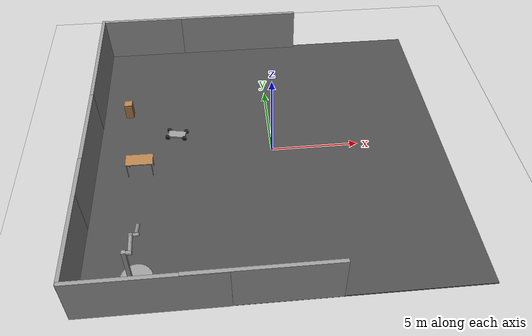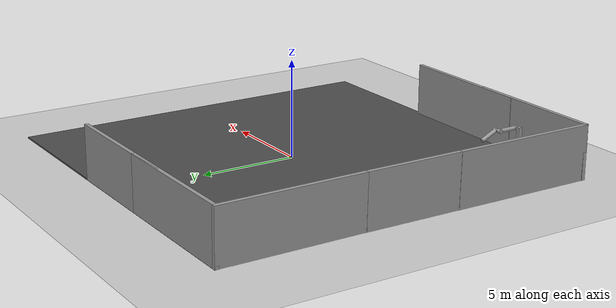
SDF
<sdf version="1.7">
 <world name="default">
  <model name="ground_plane">
   <static>1</static>
   <link name="link">
    <collision name="collision">
     <geometry><plane><normal>0 0 1</normal><size>100 100</size></plane></geometry>
     <surface>
      <contact><collide_bitmask>65535</collide_bitmask></contact>
      <friction><ode><mu>100</mu><mu2>50</mu2></ode></friction>
     </surface>
    </collision>
    <visual name="visual">
     <cast_shadows>0</cast_shadows>
     <geometry><plane><normal>0 0 1</normal><size>100 100</size></plane></geometry>
     <material>
      <script><uri>file://media/materials/scripts/gazebo.material</uri><name>Gazebo/Grey</name></script>
     </material>
    </visual>
   </link>
  </model>
  <model name="cabinet">
   <static>1</static>
   <link name="cabinet_bottom_plate">
    <inertial>
     <pose>0 0 -1 0 -0 0</pose>
     <inertia><ixx>2.05</ixx><ixy>0</ixy><ixz>0</ixz><iyy>2.05</iyy><iyz>0</iyz><izz>2.05</izz></inertia>
     <mass>25</mass>
    </inertial>
    <collision name="cabinet_bottom_plate_geom">
     <pose>0 0 0.01 0 -0 0</pose>
     <geometry><box><size>0.45 0.45 0.02</size></box></geometry>
    </collision>
    <visual name="cabinet_bottom_plate_geom_visual">
     <pose>0 0 0.01 0 -0 0</pose>
     <geometry><box><size>0.45 0.45 0.02</size></box></geometry>
     <material>
      <script><uri>file://media/materials/scripts/gazebo.material</uri><name>Gazebo/Wood</name></script>
     </material>
    </visual>
    <collision name="cabinet_bottom_plate_geom_cabinet_back_plate">
     <pose>0.235 0 0.51 0 -0 0</pose>
     <geometry><box><size>0.02 0.45 1.02</size></box></geometry>
    </collision>
    <visual name="cabinet_bottom_plate_geom_cabinet_back_plate_visual">
     <pose>0.235 0 0.51 0 -0 0</pose>
     <geometry><box><size>0.02 0.45 1.02</size></box></geometry>
     <material>
      <script><uri>file://media/materials/scripts/gazebo.material</uri><name>Gazebo/Wood</name></script>
     </material>
    </visual>
    <collision name="cabinet_bottom_plate_geom_cabinet_left_plate">
     <pose>0 0.235 0.51 0 -0 0</pose>
     <geometry><box><size>0.45 0.02 1.02</size></box></geometry>
    </collision>
    <visual name="cabinet_bottom_plate_geom_cabinet_left_plate_visual">
     <pose>0 0.235 0.51 0 -0 0</pose>
     <geometry><box><size>0.45 0.02 1.02</size></box></geometry>
     <material>
      <script><uri>file://media/materials/scripts/gazebo.material</uri><name>Gazebo/Wood</name></script>
     </material>
    </visual>
    <collision name="cabinet_bottom_plate_geom_cabinet_middle_plate">
     <pose>0 0 0.51 0 -0 0</pose>
     <geometry><box><size>0.45 0.45 0.02</size></box></geometry>
    </collision>
    <visual name="cabinet_bottom_plate_geom_cabinet_middle_plate_visual">
     <pose>0 0 0.51 0 -0 0</pose>
     <geometry><box><size>0.45 0.45 0.02</size></box></geometry>
     <material>
      <script><uri>file://media/materials/scripts/gazebo.material</uri><name>Gazebo/Wood</name></script>
     </material>
    </visual>
    <collision name="cabinet_bottom_plate_geom_cabinet_right_plate">
     <pose>0 -0.235 0.51 0 -0 0</pose>
     <geometry><box><size>0.45 0.02 1.02</size></box></geometry>
    </collision>
    <visual name="cabinet_bottom_plate_geom_cabinet_right_plate_visual">
     <pose>0 -0.235 0.51 0 -0 0</pose>
     <geometry><box><size>0.45 0.02 1.02</size></box></geometry>
     <material>
      <script><uri>file://media/materials/scripts/gazebo.material</uri><name>Gazebo/Wood</name></script>
     </material>
    </visual>
    <collision name="cabinet_bottom_plate_geom_cabinet_top_plate">
     <pose>0 0 1.01 0 -0 0</pose>
     <geometry><box><size>0.45 0.45 0.02</size></box></geometry>
    </collision>
    <visual name="cabinet_bottom_plate_geom_cabinet_top_plate_visual">
     <pose>0 0 1.01 0 -0 0</pose>
     <geometry><box><size>0.45 0.45 0.02</size></box></geometry>
     <material>
      <script><uri>file://media/materials/scripts/gazebo.material</uri><name>Gazebo/Wood</name></script>
     </material>
    </visual>
   </link>
   <pose>-8.36794 3.68081 0 0 -0 0</pose>
  </model>
  <model name="cart_rigid_suspension_0">
   <link name="chassis">
    <pose>0 0 0.15 0 -0 0</pose>
    <inertial>
     <pose>0.1 0 0 0 -0 0</pose>
     <mass>10</mass>
     <inertia>
      <ixx>0.216667</ixx>
      <iyy>0.841667</iyy>
      <izz>1.04167</izz>
      <ixy>0</ixy>
      <ixz>0</ixz>
      <iyz>0</iyz>
     </inertia>
    </inertial>
    <collision name="collision"><geometry><box><size>1 0.5 0.1</size></box></geometry></collision>
    <visual name="visual">
     <geometry><box><size>1 0.5 0.1</size></box></geometry>
     <material>
      <script><uri>file://media/materials/scripts/gazebo.material</uri><name>Gazebo/Grey</name></script>
     </material>
    </visual>
   </link>
   <link name="wheel_front_left">
    <pose>0.5 0.298 0.15 -1.5708 0 0</pose>
    <inertial>
     <mass>0.5</mass>
     <inertia>
      <ixx>0.00307917</ixx>
      <iyy>0.00307917</iyy>
      <izz>0.005625</izz>
      <ixy>0</ixy>
      <ixz>0</ixz>
      <iyz>0</iyz>
     </inertia>
    </inertial>
    <collision name="collision">
     <geometry><cylinder><radius>0.15</radius><length>0.08</length></cylinder></geometry>
    </collision>
    <visual name="visual">
     <geometry><cylinder><radius>0.15</radius><length>0.08</length></cylinder></geometry>
     <material>
      <script><uri>file://media/materials/scripts/gazebo.material</uri><name>Gazebo/Black</name></script>
     </material>
    </visual>
   </link>
   <joint name="wheel_front_left_spin" type="revolute">
    <parent>chassis</parent>
    <child>wheel_front_left</child>
    <axis>
     <xyz>0 0 1</xyz>
     <limit><lower>-1e+16</lower><upper>1e+16</upper></limit>
     <dynamics><spring_reference>0</spring_reference><spring_stiffness>0</spring_stiffness></dynamics>
    </axis>
   </joint>
   <link name="wheel_front_right">
    <pose>0.5 -0.298 0.15 -1.5708 0 0</pose>
    <inertial>
     <mass>0.5</mass>
     <inertia>
      <ixx>0.00307917</ixx>
      <iyy>0.00307917</iyy>
      <izz>0.005625</izz>
      <ixy>0</ixy>
      <ixz>0</ixz>
      <iyz>0</iyz>
     </inertia>
    </inertial>
    <collision name="collision">
     <geometry><cylinder><radius>0.15</radius><length>0.08</length></cylinder></geometry>
    </collision>
    <visual name="visual">
     <geometry><cylinder><radius>0.15</radius><length>0.08</length></cylinder></geometry>
     <material>
      <script><uri>file://media/materials/scripts/gazebo.material</uri><name>Gazebo/Black</name></script>
     </material>
    </visual>
   </link>
   <joint name="wheel_front_right_spin" type="revolute">
    <parent>chassis</parent>
    <child>wheel_front_right</child>
    <axis>
     <xyz>0 0 1</xyz>
     <limit><lower>-1e+16</lower><upper>1e+16</upper></limit>
     <dynamics><spring_reference>0</spring_reference><spring_stiffness>0</spring_stiffness></dynamics>
    </axis>
   </joint>
   <link name="wheel_rear_left">
    <pose>-0.5 0.298 0.15 -1.5708 0 0</pose>
    <inertial>
     <mass>0.5</mass>
     <inertia>
      <ixx>0.00307917</ixx>
      <iyy>0.00307917</iyy>
      <izz>0.005625</izz>
      <ixy>0</ixy>
      <ixz>0</ixz>
      <iyz>0</iyz>
     </inertia>
    </inertial>
    <collision name="collision">
     <geometry><cylinder><radius>0.15</radius><length>0.08</length></cylinder></geometry>
    </collision>
    <visual name="visual">
     <geometry><cylinder><radius>0.15</radius><length>0.08</length></cylinder></geometry>
     <material>
      <script><uri>file://media/materials/scripts/gazebo.material</uri><name>Gazebo/Black</name></script>
     </material>
    </visual>
   </link>
   <joint name="wheel_rear_left_spin" type="revolute">
    <parent>chassis</parent>
    <child>wheel_rear_left</child>
    <axis>
     <xyz>0 0 1</xyz>
     <limit><lower>-1e+16</lower><upper>1e+16</upper></limit>
     <dynamics><spring_reference>0</spring_reference><spring_stiffness>0</spring_stiffness></dynamics>
    </axis>
   </joint>
   <link name="wheel_rear_right">
    <pose>-0.5 -0.298 0.15 -1.5708 0 0</pose>
    <inertial>
     <mass>0.5</mass>
     <inertia>
      <ixx>0.00307917</ixx>
      <iyy>0.00307917</iyy>
      <izz>0.005625</izz>
      <ixy>0</ixy>
      <ixz>0</ixz>
      <iyz>0</iyz>
     </inertia>
    </inertial>
    <collision name="collision">
     <geometry><cylinder><radius>0.15</radius><length>0.08</length></cylinder></geometry>
    </collision>
    <visual name="visual">
     <geometry><cylinder><radius>0.15</radius><length>0.08</length></cylinder></geometry>
     <material>
      <script><uri>file://media/materials/scripts/gazebo.material</uri><name>Gazebo/Black</name></script>
     </material>
    </visual>
   </link>
   <joint name="wheel_rear_right_spin" type="revolute">
    <parent>chassis</parent>
    <child>wheel_rear_right</child>
    <axis>
     <xyz>0 0 1</xyz>
     <limit><lower>-1e+16</lower><upper>1e+16</upper></limit>
     <dynamics><spring_reference>0</spring_reference><spring_stiffness>0</spring_stiffness></dynamics>
    </axis>
   </joint>
   <pose>-5.48215 1.54348 0.049992 1.3e-05 -8e-06 -0.187801</pose>
  </model>
  <model name="double_pendulum_with_base_0">
   <link name="base">
    <inertial>
     <mass>100</mass>
     <inertia><ixx>1</ixx><ixy>0</ixy><ixz>0</ixz><iyy>1</iyy><iyz>0</iyz><izz>1</izz></inertia>
    </inertial>
    <visual name="vis_plate_on_ground">
     <pose>0 0 0.01 0 -0 0</pose>
     <geometry><cylinder><radius>0.8</radius><length>0.02</length></cylinder></geometry>
     <material>
      <script><uri>file://media/materials/scripts/gazebo.material</uri><name>Gazebo/Grey</name></script>
     </material>
    </visual>
    <visual name="vis_pole">
     <pose>-0.275 0 1.1 0 -0 0</pose>
     <geometry><box><size>0.2 0.2 2.2</size></box></geometry>
     <material>
      <script><uri>file://media/materials/scripts/gazebo.material</uri><name>Gazebo/Grey</name></script>
     </material>
    </visual>
    <collision name="col_plate_on_ground">
     <pose>0 0 0.01 0 -0 0</pose>
     <geometry><cylinder><radius>0.8</radius><length>0.02</length></cylinder></geometry>
    </collision>
    <collision name="col_pole">
     <pose>-0.275 0 1.1 0 -0 0</pose>
     <geometry><box><size>0.2 0.2 2.2</size></box></geometry>
    </collision>
   </link>
   <link name="upper_link">
    <pose>0 0 2.1 -1.5708 0 0</pose>
    <inertial>
     <pose>0 0 0.5 0 -0 0</pose>
     <inertia><ixx>1</ixx><ixy>0</ixy><ixz>0</ixz><iyy>1</iyy><iyz>0</iyz><izz>1</izz></inertia>
     <mass>1</mass>
    </inertial>
    <visual name="vis_upper_joint">
     <pose>-0.05 0 0 3.14159 1.57079 3.14159</pose>
     <geometry><cylinder><radius>0.1</radius><length>0.3</length></cylinder></geometry>
     <material>
      <script><uri>file://media/materials/scripts/gazebo.material</uri><name>Gazebo/Grey</name></script>
     </material>
    </visual>
    <visual name="vis_lower_joint">
     <pose>0 0 1 3.14159 1.57079 3.14159</pose>
     <geometry><cylinder><radius>0.1</radius><length>0.2</length></cylinder></geometry>
     <material>
      <script><uri>file://media/materials/scripts/gazebo.material</uri><name>Gazebo/Grey</name></script>
     </material>
    </visual>
    <visual name="vis_cylinder">
     <pose>0 0 0.5 0 -0 0</pose>
     <geometry><cylinder><radius>0.1</radius><length>0.9</length></cylinder></geometry>
     <material>
      <script><uri>file://media/materials/scripts/gazebo.material</uri><name>Gazebo/Grey</name></script>
     </material>
    </visual>
    <collision name="col_upper_joint">
     <pose>-0.05 0 0 3.14159 1.57079 3.14159</pose>
     <geometry><cylinder><radius>0.1</radius><length>0.3</length></cylinder></geometry>
    </collision>
    <collision name="col_lower_joint">
     <pose>0 0 1 3.14159 1.57079 3.14159</pose>
     <geometry><cylinder><radius>0.1</radius><length>0.2</length></cylinder></geometry>
    </collision>
    <collision name="col_cylinder">
     <pose>0 0 0.5 0 -0 0</pose>
     <geometry><cylinder><radius>0.1</radius><length>0.9</length></cylinder></geometry>
    </collision>
   </link>
   <link name="lower_link">
    <pose>0.25 1 2.1 -2 0 0</pose>
    <inertial>
     <pose>0 0 0.5 0 -0 0</pose>
     <inertia><ixx>1</ixx><ixy>0</ixy><ixz>0</ixz><iyy>1</iyy><iyz>0</iyz><izz>1</izz></inertia>
     <mass>1</mass>
    </inertial>
    <visual name="vis_lower_joint">
     <pose>0 0 0 3.14159 1.57079 3.14159</pose>
     <geometry><cylinder><radius>0.08</radius><length>0.3</length></cylinder></geometry>
     <material>
      <script><uri>file://media/materials/scripts/gazebo.material</uri><name>Gazebo/Grey</name></script>
     </material>
    </visual>
    <visual name="vis_cylinder">
     <pose>0 0 0.5 0 -0 0</pose>
     <geometry><cylinder><radius>0.1</radius><length>0.9</length></cylinder></geometry>
     <material>
      <script><uri>file://media/materials/scripts/gazebo.material</uri><name>Gazebo/Grey</name></script>
     </material>
    </visual>
    <collision name="col_lower_joint">
     <pose>0 0 0 3.14159 1.57079 3.14159</pose>
     <geometry><cylinder><radius>0.08</radius><length>0.3</length></cylinder></geometry>
    </collision>
    <collision name="col_cylinder">
     <pose>0 0 0.5 0 -0 0</pose>
     <geometry><cylinder><radius>0.1</radius><length>0.9</length></cylinder></geometry>
    </collision>
   </link>
   <joint name="upper_joint" type="revolute">
    <parent>base</parent>
    <child>upper_link</child>
    <axis>
     <xyz>1 0 0</xyz>
     <limit><lower>-1e+16</lower><upper>1e+16</upper></limit>
     <dynamics><spring_reference>0</spring_reference><spring_stiffness>0</spring_stiffness></dynamics>
    </axis>
   </joint>
   <joint name="lower_joint" type="revolute">
    <parent>upper_link</parent>
    <child>lower_link</child>
    <axis>
     <xyz>1 0 0</xyz>
     <limit><lower>-1e+16</lower><upper>1e+16</upper></limit>
     <dynamics><spring_reference>0</spring_reference><spring_stiffness>0</spring_stiffness></dynamics>
    </axis>
   </joint>
   <pose>-7.31469 -8.12246 0.049998 -4e-06 -9e-06 0.021155</pose>
  </model>
  <model name="grey_wall_clone">
   <static>1</static>
   <link name="link">
    <pose>0 0 1.4 0 -0 0</pose>
    <collision name="collision"><geometry><box><size>7.5 0.2 2.8</size></box></geometry></collision>
    <visual name="visual">
     <cast_shadows>0</cast_shadows>
     <geometry><box><size>7.5 0.2 2.8</size></box></geometry>
     <material>
      <script>
       <uri>model://grey_wall/materials/scripts</uri>
       <uri>model://grey_wall/materials/textures</uri>
       <name>vrc/grey_wall</name>
      </script>
     </material>
    </visual>
   </link>
   <pose>-1.30985 9.91551 -0.011389 0 -0 0</pose>
  </model>
  <model name="grey_wall_clone_clone">
   <static>1</static>
   <link name="link">
    <pose>0 0 1.4 0 -0 0</pose>
    <collision name="collision"><geometry><box><size>7.5 0.2 2.8</size></box></geometry></collision>
    <visual name="visual">
     <cast_shadows>0</cast_shadows>
     <geometry><box><size>7.5 0.2 2.8</size></box></geometry>
     <material>
      <script>
       <uri>model://grey_wall/materials/scripts</uri>
       <uri>model://grey_wall/materials/textures</uri>
       <name>vrc/grey_wall</name>
      </script>
     </material>
    </visual>
   </link>
   <pose>-10.0019 6.28555 -0.002725 -0.030355 0.000109 1.573</pose>
  </model>
  <model name="grey_wall_clone_clone_clone">
   <static>1</static>
   <link name="link">
    <pose>0 0 1.4 0 -0 0</pose>
    <collision name="collision"><geometry><box><size>7.5 0.2 2.8</size></box></geometry></collision>
    <visual name="visual">
     <cast_shadows>0</cast_shadows>
     <geometry><box><size>7.5 0.2 2.8</size></box></geometry>
     <material>
      <script>
       <uri>model://grey_wall/materials/scripts</uri>
       <uri>model://grey_wall/materials/textures</uri>
       <name>vrc/grey_wall</name>
      </script>
     </material>
    </visual>
   </link>
   <pose>-10.0365 -1.20211 -0.002209 -0.025382 -0.000213 1.56239</pose>
  </model>
  <model name="table">
   <static>1</static>
   <link name="link">
    <collision name="surface">
     <pose>0 0 1 0 -0 0</pose>
     <geometry><box><size>1.5 0.8 0.03</size></box></geometry>
     <surface><friction><ode><mu>0.6</mu><mu2>0.6</mu2></ode></friction></surface>
    </collision>
    <visual name="visual1">
     <pose>0 0 1 0 -0 0</pose>
     <geometry><box><size>1.5 0.8 0.03</size></box></geometry>
     <material>
      <script><uri>file://media/materials/scripts/gazebo.material</uri><name>Gazebo/Wood</name></script>
     </material>
    </visual>
    <collision name="front_left_leg">
     <pose>0.68 0.38 0.5 0 -0 0</pose>
     <geometry><cylinder><radius>0.02</radius><length>1</length></cylinder></geometry>
    </collision>
    <visual name="front_left_leg">
     <pose>0.68 0.38 0.5 0 -0 0</pose>
     <geometry><cylinder><radius>0.02</radius><length>1</length></cylinder></geometry>
     <material>
      <script><uri>file://media/materials/scripts/gazebo.material</uri><name>Gazebo/Grey</name></script>
     </material>
    </visual>
    <collision name="front_right_leg">
     <pose>0.68 -0.38 0.5 0 -0 0</pose>
     <geometry><cylinder><radius>0.02</radius><length>1</length></cylinder></geometry>
    </collision>
    <visual name="front_right_leg">
     <pose>0.68 -0.38 0.5 0 -0 0</pose>
     <geometry><cylinder><radius>0.02</radius><length>1</length></cylinder></geometry>
     <material>
      <script><uri>file://media/materials/scripts/gazebo.material</uri><name>Gazebo/Grey</name></script>
     </material>
    </visual>
    <collision name="back_right_leg">
     <pose>-0.68 -0.38 0.5 0 -0 0</pose>
     <geometry><cylinder><radius>0.02</radius><length>1</length></cylinder></geometry>
    </collision>
    <visual name="back_right_leg">
     <pose>-0.68 -0.38 0.5 0 -0 0</pose>
     <geometry><cylinder><radius>0.02</radius><length>1</length></cylinder></geometry>
     <material>
      <script><uri>file://media/materials/scripts/gazebo.material</uri><name>Gazebo/Grey</name></script>
     </material>
    </visual>
    <collision name="back_left_leg">
     <pose>-0.68 0.38 0.5 0 -0 0</pose>
     <geometry><cylinder><radius>0.02</radius><length>1</length></cylinder></geometry>
    </collision>
    <visual name="back_left_leg">
     <pose>-0.68 0.38 0.5 0 -0 0</pose>
     <geometry><cylinder><radius>0.02</radius><length>1</length></cylinder></geometry>
     <material>
      <script><uri>file://media/materials/scripts/gazebo.material</uri><name>Gazebo/Grey</name></script>
     </material>
    </visual>
   </link>
   <pose>-7.44659 -1.11656 0 0 -0 0</pose>
  </model>
  <model name="asphalt_plane">
   <static>1</static>
   <link name="link">
    <collision name="collision"><geometry><box><size>20 20 0.1</size></box></geometry></collision>
    <visual name="visual">
     <cast_shadows>0</cast_shadows>
     <geometry><box><size>20 20 0.1</size></box></geometry>
     <material>
      <script>
       <uri>model://asphalt_plane/materials/scripts</uri>
       <uri>model://asphalt_plane/materials/textures</uri>
       <name>vrc/asphalt</name>
      </script>
     </material>
    </visual>
   </link>
   <pose>-0.019824 0.009756 0 0 -0 0</pose>
  </model>
  <model name="grey_wall_clone_1">
   <static>1</static>
   <link name="link">
    <pose>0 0 1.4 0 -0 0</pose>
    <collision name="collision"><geometry><box><size>7.5 0.2 2.8</size></box></geometry></collision>
    <visual name="visual">
     <cast_shadows>0</cast_shadows>
     <geometry><box><size>7.5 0.2 2.8</size></box></geometry>
     <material>
      <script>
       <uri>model://grey_wall/materials/scripts</uri>
       <uri>model://grey_wall/materials/textures</uri>
       <name>vrc/grey_wall</name>
      </script>
     </material>
    </visual>
   </link>
   <pose>-1.25147 -9.89964 0.00405 0 -0 0</pose>
  </model>
  <model name="grey_wall_clone_clone_0">
   <static>1</static>
   <link name="link">
    <pose>0 0 1.4 0 -0 0</pose>
    <collision name="collision"><geometry><box><size>7.5 0.2 2.8</size></box></geometry></collision>
    <visual name="visual">
     <cast_shadows>0</cast_shadows>
     <geometry><box><size>7.5 0.2 2.8</size></box></geometry>
     <material>
      <script>
       <uri>model://grey_wall/materials/scripts</uri>
       <uri>model://grey_wall/materials/textures</uri>
       <name>vrc/grey_wall</name>
      </script>
     </material>
    </visual>
   </link>
   <pose>-6.36447 9.9167 -0.011389 0 -0 0</pose>
  </model>
  <model name="grey_wall_clone_1_clone">
   <static>1</static>
   <link name="link">
    <pose>0 0 1.4 0 -0 0</pose>
    <collision name="collision"><geometry><box><size>7.5 0.2 2.8</size></box></geometry></collision>
    <visual name="visual">
     <cast_shadows>0</cast_shadows>
     <geometry><box><size>7.5 0.2 2.8</size></box></geometry>
     <material>
      <script>
       <uri>model://grey_wall/materials/scripts</uri>
       <uri>model://grey_wall/materials/textures</uri>
       <name>vrc/grey_wall</name>
      </script>
     </material>
    </visual>
   </link>
   <pose>-6.50915 -9.92531 0.00405 0 -0 0</pose>
  </model>
  <model name="grey_wall_clone_clone_clone_clone">
   <static>1</static>
   <link name="link">
    <pose>0 0 1.4 0 -0 0</pose>
    <collision name="collision"><geometry><box><size>7.5 0.2 2.8</size></box></geometry></collision>
    <visual name="visual">
     <cast_shadows>0</cast_shadows>
     <geometry><box><size>7.5 0.2 2.8</size></box></geometry>
     <material>
      <script>
       <uri>model://grey_wall/materials/scripts</uri>
       <uri>model://grey_wall/materials/textures</uri>
       <name>vrc/grey_wall</name>
      </script>
     </material>
    </visual>
   </link>
   <pose>-10.0922 -6.23176 -0.002209 -0.025382 -0.000213 1.56239</pose>
  </model>
 </world>
</sdf>
